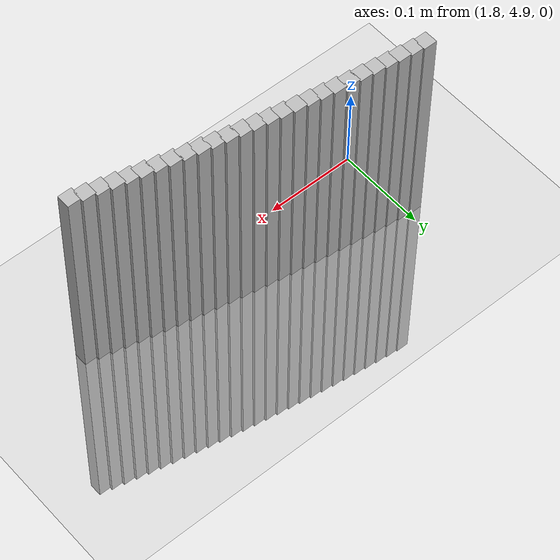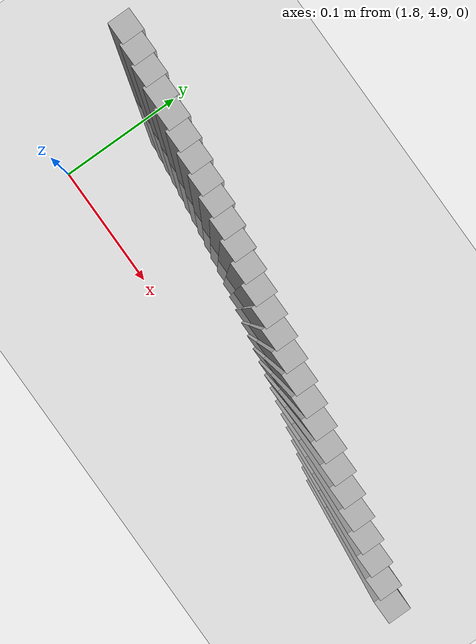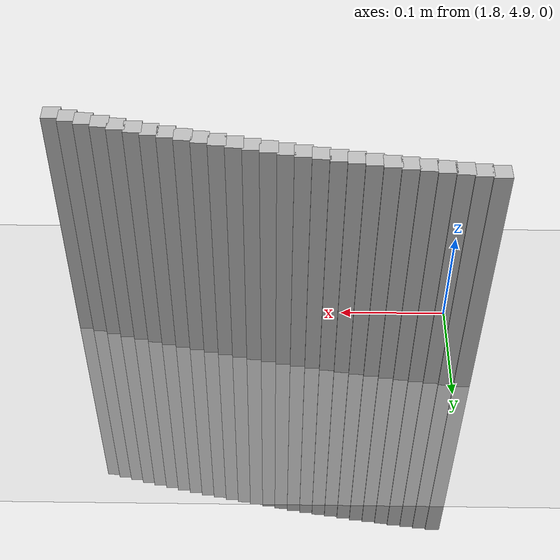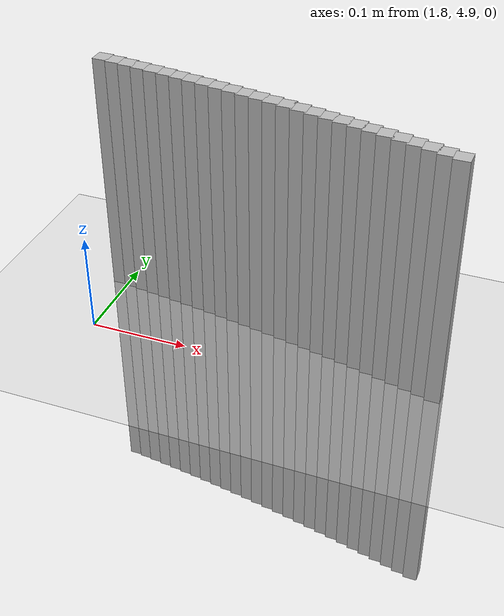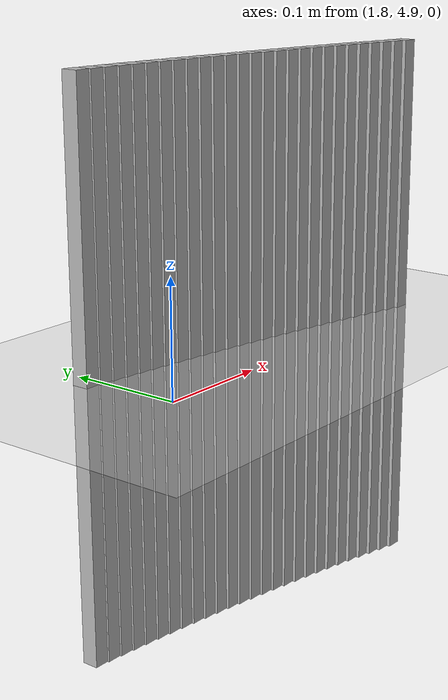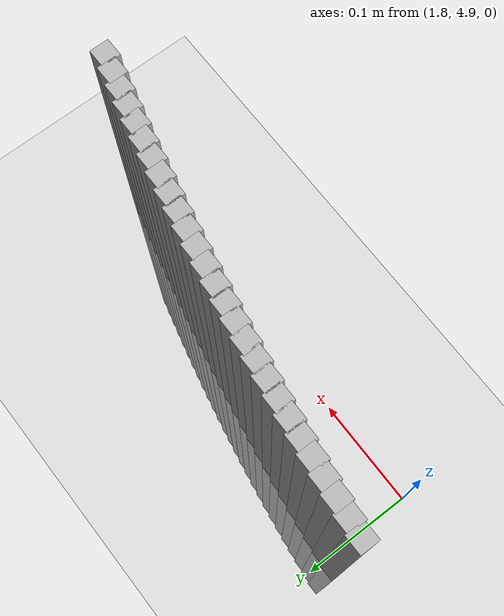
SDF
<sdf version="1.6">
 <world name="base">
  <include><uri>model://sun</uri></include>
  <include><uri>model://ground_plane</uri></include>
  <model name="k404">
   <link name="29_link">
    <collision name="collision_29">
     <pose>1.7910054655766223 4.9830054005186 0 0 -0 0</pose>
     <geometry><box><size>0.015 0.015 0.50</size></box></geometry>
    </collision>
    <visual name="visual_29">
     <pose>1.7910054655766223 4.9830054005186 0 0 -0 0</pose>
     <geometry><box><size>0.015 0.015 0.50</size></box></geometry>
    </visual>
   </link>
   <link name="30_link">
    <collision name="collision_30">
     <pose>1.804795378251291 4.981350393917927 0 0 -0 0</pose>
     <geometry><box><size>0.015 0.015 0.50</size></box></geometry>
    </collision>
    <visual name="visual_30">
     <pose>1.804795378251291 4.981350393917927 0 0 -0 0</pose>
     <geometry><box><size>0.015 0.015 0.50</size></box></geometry>
    </visual>
   </link>
   <link name="31_link">
    <collision name="collision_31">
     <pose>1.8185758836853947 4.979618802625531 0 0 -0 0</pose>
     <geometry><box><size>0.015 0.015 0.50</size></box></geometry>
    </collision>
    <visual name="visual_31">
     <pose>1.8185758836853947 4.979618802625531 0 0 -0 0</pose>
     <geometry><box><size>0.015 0.015 0.50</size></box></geometry>
    </visual>
   </link>
   <link name="32_link">
    <collision name="collision_32">
     <pose>1.8323465565557853 4.977810680085449 0 0 -0 0</pose>
     <geometry><box><size>0.015 0.015 0.50</size></box></geometry>
    </collision>
    <visual name="visual_32">
     <pose>1.8323465565557853 4.977810680085449 0 0 -0 0</pose>
     <geometry><box><size>0.015 0.015 0.50</size></box></geometry>
    </visual>
   </link>
   <link name="33_link">
    <collision name="collision_33">
     <pose>1.8461069718427883 4.975926082103788 0 0 -0 0</pose>
     <geometry><box><size>0.015 0.015 0.50</size></box></geometry>
    </collision>
    <visual name="visual_33">
     <pose>1.8461069718427883 4.975926082103788 0 0 -0 0</pose>
     <geometry><box><size>0.015 0.015 0.50</size></box></geometry>
    </visual>
   </link>
   <link name="34_link">
    <collision name="collision_34">
     <pose>1.8598567048433203 4.973965066847006 0 0 -0 0</pose>
     <geometry><box><size>0.015 0.015 0.50</size></box></geometry>
    </collision>
    <visual name="visual_34">
     <pose>1.8598567048433203 4.973965066847006 0 0 -0 0</pose>
     <geometry><box><size>0.015 0.015 0.50</size></box></geometry>
    </visual>
   </link>
   <link name="35_link">
    <collision name="collision_35">
     <pose>1.873595331183998 4.971927694840105 0 0 -0 0</pose>
     <geometry><box><size>0.015 0.015 0.50</size></box></geometry>
    </collision>
    <visual name="visual_35">
     <pose>1.873595331183998 4.971927694840105 0 0 -0 0</pose>
     <geometry><box><size>0.015 0.015 0.50</size></box></geometry>
    </visual>
   </link>
   <link name="36_link">
    <collision name="collision_36">
     <pose>1.8873224268342346 4.96981402896478 0 0 -0 0</pose>
     <geometry><box><size>0.015 0.015 0.50</size></box></geometry>
    </collision>
    <visual name="visual_36">
     <pose>1.8873224268342346 4.96981402896478 0 0 -0 0</pose>
     <geometry><box><size>0.015 0.015 0.50</size></box></geometry>
    </visual>
   </link>
   <link name="37_link">
    <collision name="collision_37">
     <pose>1.9010375681193281 4.967624134457461 0 0 -0 0</pose>
     <geometry><box><size>0.015 0.015 0.50</size></box></geometry>
    </collision>
    <visual name="visual_37">
     <pose>1.9010375681193281 4.967624134457461 0 0 -0 0</pose>
     <geometry><box><size>0.015 0.015 0.50</size></box></geometry>
    </visual>
   </link>
   <link name="38_link">
    <collision name="collision_38">
     <pose>1.9147403317335376 4.965358078907313 0 0 -0 0</pose>
     <geometry><box><size>0.015 0.015 0.50</size></box></geometry>
    </collision>
    <visual name="visual_38">
     <pose>1.9147403317335376 4.965358078907313 0 0 -0 0</pose>
     <geometry><box><size>0.015 0.015 0.50</size></box></geometry>
    </visual>
   </link>
   <link name="39_link">
    <collision name="collision_39">
     <pose>1.9284302947531478 4.96301593225414 0 0 -0 0</pose>
     <geometry><box><size>0.015 0.015 0.50</size></box></geometry>
    </collision>
    <visual name="visual_39">
     <pose>1.9284302947531478 4.96301593225414 0 0 -0 0</pose>
     <geometry><box><size>0.015 0.015 0.50</size></box></geometry>
    </visual>
   </link>
   <link name="40_link">
    <collision name="collision_40">
     <pose>1.9421070346495226 4.960597766786234 0 0 -0 0</pose>
     <geometry><box><size>0.015 0.015 0.50</size></box></geometry>
    </collision>
    <visual name="visual_40">
     <pose>1.9421070346495226 4.960597766786234 0 0 -0 0</pose>
     <geometry><box><size>0.015 0.015 0.50</size></box></geometry>
    </visual>
   </link>
   <link name="41_link">
    <collision name="collision_41">
     <pose>1.955770129302146 4.958103657138141 0 0 -0 0</pose>
     <geometry><box><size>0.015 0.015 0.50</size></box></geometry>
    </collision>
    <visual name="visual_41">
     <pose>1.955770129302146 4.958103657138141 0 0 -0 0</pose>
     <geometry><box><size>0.015 0.015 0.50</size></box></geometry>
    </visual>
   </link>
   <link name="42_link">
    <collision name="collision_42">
     <pose>1.9694191570116506 4.9555336802883545 0 0 -0 0</pose>
     <geometry><box><size>0.015 0.015 0.50</size></box></geometry>
    </collision>
    <visual name="visual_42">
     <pose>1.9694191570116506 4.9555336802883545 0 0 -0 0</pose>
     <geometry><box><size>0.015 0.015 0.50</size></box></geometry>
    </visual>
   </link>
   <link name="43_link">
    <collision name="collision_43">
     <pose>1.9830536965128323 4.952887915556944 0 0 -0 0</pose>
     <geometry><box><size>0.015 0.015 0.50</size></box></geometry>
    </collision>
    <visual name="visual_43">
     <pose>1.9830536965128323 4.952887915556944 0 0 -0 0</pose>
     <geometry><box><size>0.015 0.015 0.50</size></box></geometry>
    </visual>
   </link>
   <link name="44_link">
    <collision name="collision_44">
     <pose>1.996673326987653 4.950166444603104 0 0 -0 0</pose>
     <geometry><box><size>0.015 0.015 0.50</size></box></geometry>
    </collision>
    <visual name="visual_44">
     <pose>1.996673326987653 4.950166444603104 0 0 -0 0</pose>
     <geometry><box><size>0.015 0.015 0.50</size></box></geometry>
    </visual>
   </link>
   <link name="45_link">
    <collision name="collision_45">
     <pose>2.010277628078229 4.947369351422637 0 0 -0 0</pose>
     <geometry><box><size>0.015 0.015 0.50</size></box></geometry>
    </collision>
    <visual name="visual_45">
     <pose>2.010277628078229 4.947369351422637 0 0 -0 0</pose>
     <geometry><box><size>0.015 0.015 0.50</size></box></geometry>
    </visual>
   </link>
   <link name="46_link">
    <collision name="collision_46">
     <pose>2.0238661798998034 4.944496722345356 0 0 -0 0</pose>
     <geometry><box><size>0.015 0.015 0.50</size></box></geometry>
    </collision>
    <visual name="visual_46">
     <pose>2.0238661798998034 4.944496722345356 0 0 -0 0</pose>
     <geometry><box><size>0.015 0.015 0.50</size></box></geometry>
    </visual>
   </link>
   <link name="47_link">
    <collision name="collision_47">
     <pose>2.0374385630537084 4.941548646032425 0 0 -0 0</pose>
     <geometry><box><size>0.015 0.015 0.50</size></box></geometry>
    </collision>
    <visual name="visual_47">
     <pose>2.0374385630537084 4.941548646032425 0 0 -0 0</pose>
     <geometry><box><size>0.015 0.015 0.50</size></box></geometry>
    </visual>
   </link>
   <link name="48_link">
    <collision name="collision_48">
     <pose>2.0509943586403057 4.938525213473619 0 0 -0 0</pose>
     <geometry><box><size>0.015 0.015 0.50</size></box></geometry>
    </collision>
    <visual name="visual_48">
     <pose>2.0509943586403057 4.938525213473619 0 0 -0 0</pose>
     <geometry><box><size>0.015 0.015 0.50</size></box></geometry>
    </visual>
   </link>
   <link name="49_link">
    <collision name="collision_49">
     <pose>2.064533148271919 4.935426517984519 0 0 -0 0</pose>
     <geometry><box><size>0.015 0.015 0.50</size></box></geometry>
    </collision>
    <visual name="visual_49">
     <pose>2.064533148271919 4.935426517984519 0 0 -0 0</pose>
     <geometry><box><size>0.015 0.015 0.50</size></box></geometry>
    </visual>
   </link>
   <link name="50_link">
    <collision name="collision_50">
     <pose>2.0780545140857463 4.9322526552036265 0 0 -0 0</pose>
     <geometry><box><size>0.015 0.015 0.50</size></box></geometry>
    </collision>
    <visual name="visual_50">
     <pose>2.0780545140857463 4.9322526552036265 0 0 -0 0</pose>
     <geometry><box><size>0.015 0.015 0.50</size></box></geometry>
    </visual>
   </link>
   <link name="51_link">
    <collision name="collision_51">
     <pose>2.091558038756755 4.929003723089419 0 0 -0 0</pose>
     <geometry><box><size>0.015 0.015 0.50</size></box></geometry>
    </collision>
    <visual name="visual_51">
     <pose>2.091558038756755 4.929003723089419 0 0 -0 0</pose>
     <geometry><box><size>0.015 0.015 0.50</size></box></geometry>
    </visual>
   </link>
   <link name="52_link">
    <collision name="collision_52">
     <pose>2.1050433055105637 4.925679821917322 0 0 -0 0</pose>
     <geometry><box><size>0.015 0.015 0.50</size></box></geometry>
    </collision>
    <visual name="visual_52">
     <pose>2.1050433055105637 4.925679821917322 0 0 -0 0</pose>
     <geometry><box><size>0.015 0.015 0.50</size></box></geometry>
    </visual>
   </link>
   <link name="53_link">
    <collision name="collision_53">
     <pose>2.118509898136307 4.922281054276612 0 0 -0 0</pose>
     <geometry><box><size>0.015 0.015 0.50</size></box></geometry>
    </collision>
    <visual name="visual_53">
     <pose>2.118509898136307 4.922281054276612 0 0 -0 0</pose>
     <geometry><box><size>0.015 0.015 0.50</size></box></geometry>
    </visual>
   </link>
   <link name="54_link">
    <collision name="collision_54">
     <pose>2.131957400999479 4.918807525067256 0 0 -0 0</pose>
     <geometry><box><size>0.015 0.015 0.50</size></box></geometry>
    </collision>
    <visual name="visual_54">
     <pose>2.131957400999479 4.918807525067256 0 0 -0 0</pose>
     <geometry><box><size>0.015 0.015 0.50</size></box></geometry>
    </visual>
   </link>
   <link name="55_link">
    <collision name="collision_55">
     <pose>2.1453853990547618 4.91525934149667 0 0 -0 0</pose>
     <geometry><box><size>0.015 0.015 0.50</size></box></geometry>
    </collision>
    <visual name="visual_55">
     <pose>2.1453853990547618 4.91525934149667 0 0 -0 0</pose>
     <geometry><box><size>0.015 0.015 0.50</size></box></geometry>
    </visual>
   </link>
   <static>true</static>
  </model>
 </world>
</sdf>
